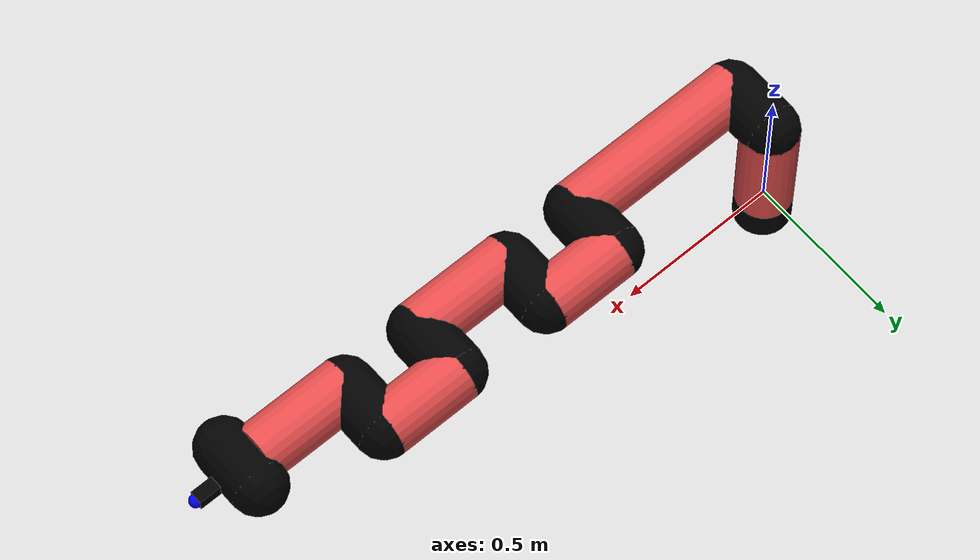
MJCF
<mujoco model="manipulator">
		<compiler angle="degree" coordinate="local" inertiafromgeom="auto" meshdir="meshes/"/>
		<option gravity="0 0 0" integrator="RK4" iterations="30" timestep="0.01"/>

		<default>
		<joint armature="1" limited="true" stiffness="10" damping="15" frictionloss="5.0"/>
		<geom conaffinity="1" condim="3" contype="1" friction=".5 .1 .1" margin="0.002"/>
		<motor ctrllimited="true"/>
		<position ctrllimited="true"/>
		</default>

		<asset>
		<texture builtin="gradient" height="100" rgb1="1.0 1.0 1.0" rgb2="1.0 1.0 1.0" type="skybox" width="100"/>
		<texture builtin="flat" height="32" name="arm_tex" rgb1="0.9 0.3 0.3" type="2d" width="32"/>
		<texture builtin="flat" height="32" name="gripper_tex" rgb1="0.0 0.0 0.0" type="cube" width="32"/>

		<material name="arm_mat" shininess="0.1" specular="0.1" texture="arm_tex"/>
		<material name="gripper_mat" shininess="1" specular="1" texture="gripper_tex"/>
		</asset>

		<worldbody>
		<light cutoff="45" diffuse=".8 .8 .8" dir="0 0.16 -1" directional="false" name="light" pos="0 -2.0 8.0" specular="0.3 0.3 0.3"/>

		<body name="base_link" pos="0 0 -0.1">
		<geom fromto="0 0 0 0 0 0.1" material="arm_mat" name="base_link" rgba="0.0 0.0 0.0 1" size="0.085" type="cylinder"/>
		</body>

		<body name="l1" pos="0 0 0">
<geom fromto="0 0 0 0 0 0.37" material="arm_mat" name="l1" rgba="0.9 0.3 0.3 1" size="0.085" type="cylinder"/>
<geom fromto="0 0 0.37 0 -0.16 0.37" material="arm_mat" name="l1_ex" rgba="0.0 0.0 0.0 1" size="0.085" type="capsule"/>
<joint axis="0 0 1" name="j1" pos="0 0 0" range="-90 90" damping="30.68" frictionloss="9.95"/>

<body name="l2" pos="0 -0.16 0.37">
<geom fromto="0 0 0 0.57 0 0" material="arm_mat" name="l2" rgba="0.9 0.3 0.3 1" size="0.085" type="cylinder"/>
<geom fromto="0.57 0 0 0.57 0.16 0" material="arm_mat" name="l2_ex" rgba="0.0 0.0 0.0 1" size="0.085" type="capsule"/>
<joint axis="0.02 1.24 0.07" name="j2" pos="0 0 0" range="-90 60" damping="31.06" frictionloss="9.42"/>

<body name="l3" pos="0.57 0.16 0">
<geom fromto="0 0 0 0.24 0 0" material="arm_mat" name="l3" rgba="0.9 0.3 0.3 1" size="0.085" type="cylinder"/>
<geom fromto="0.24 0 0 0.24 -0.16 0" material="arm_mat" name="l3_ex" rgba="0.0 0.0 0.0 1" size="0.085" type="capsule"/>
<joint axis="0.25 1.02 0.01" name="j3" pos="0 0 0" range="-30 60" damping="34.61" frictionloss="8.09"/>

<body name="l4" pos="0.24 -0.16 0">
<geom fromto="0 0 0 0.31 0 0" material="arm_mat" name="l4" rgba="0.9 0.3 0.3 1" size="0.085" type="cylinder"/>
<geom fromto="0.31 0 0 0.31 0.16 0" material="arm_mat" name="l4_ex" rgba="0.0 0.0 0.0 1" size="0.085" type="capsule"/>
<joint axis="-0.18 0.93 -0.24" name="j4" pos="0 0 0" range="-30 60" damping="36.97" frictionloss="11.31"/>

<body name="l5" pos="0.31 0.16 0">
<geom fromto="0 0 0 0.25 0 0" material="arm_mat" name="l5" rgba="0.9 0.3 0.3 1" size="0.085" type="cylinder"/>
<geom fromto="0.25 0 0 0.25 -0.16 0" material="arm_mat" name="l5_ex" rgba="0.0 0.0 0.0 1" size="0.085" type="capsule"/>
<joint axis="-0.17 1.12 -0.23" name="j5" pos="0 0 0" range="-30 60" damping="30.01" frictionloss="10.36"/>

<body name="l6" pos="0.25 -0.16 0">
<geom fromto="0 0 0 0.3 0 0" material="arm_mat" name="l6" rgba="0.9 0.3 0.3 1" size="0.085" type="cylinder"/>
<joint axis="-0.07 1.18 0.1" name="j6" pos="0 0 0" range="-30 60" damping="27.85" frictionloss="10.14"/>

<body name="gripper" pos="0.3 0 0">
<geom fromto="0.05 -0.07 0 0.05 0.07 0" material="gripper_mat" name="gripper" rgba="0.0 0.0 0.0 1" size="0.085" type="capsule"/><joint axis="1 0 0" name="j7" pos="0 0 0" range="-90 90" damping="15" frictionloss="5.0"/><body name="finger" pos="0.1 0 0">
<geom fromto="0 0.0 0 0.1 0.0 0" material="gripper_mat" name="finger" rgba="0.0 0.0 0.0 1" size="0.020 0.06 0.06" type="box"/>
</body>
<site name="current" pos="0.2 0. 0.0" rgba="0. 0. 1.0 1" size="0.02" type="sphere"/>
</body>
</body>
</body>
</body>
</body>
</body>
</body>
</worldbody>
<actuator>
<motor ctrllimited="true" ctrlrange="-1.0 1.0" joint="j1" gear="94.23"/>
<motor ctrllimited="true" ctrlrange="-1.0 1.0" joint="j2" gear="71.36"/>
<motor ctrllimited="true" ctrlrange="-1.0 1.0" joint="j3" gear="89.89"/>
<motor ctrllimited="true" ctrlrange="-1.0 1.0" joint="j4" gear="98.94"/>
<motor ctrllimited="true" ctrlrange="-1.0 1.0" joint="j5" gear="72.45"/>
<motor ctrllimited="true" ctrlrange="-1.0 1.0" joint="j6" gear="60.03"/>
<motor ctrllimited="true" ctrlrange="-1.0 1.0" joint="j7" gear="80"/>
</actuator>
</mujoco>
